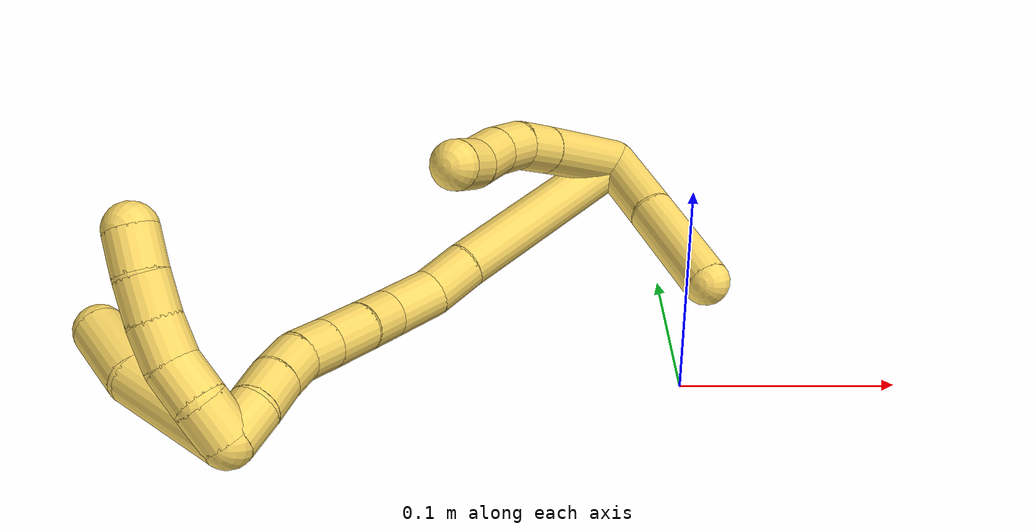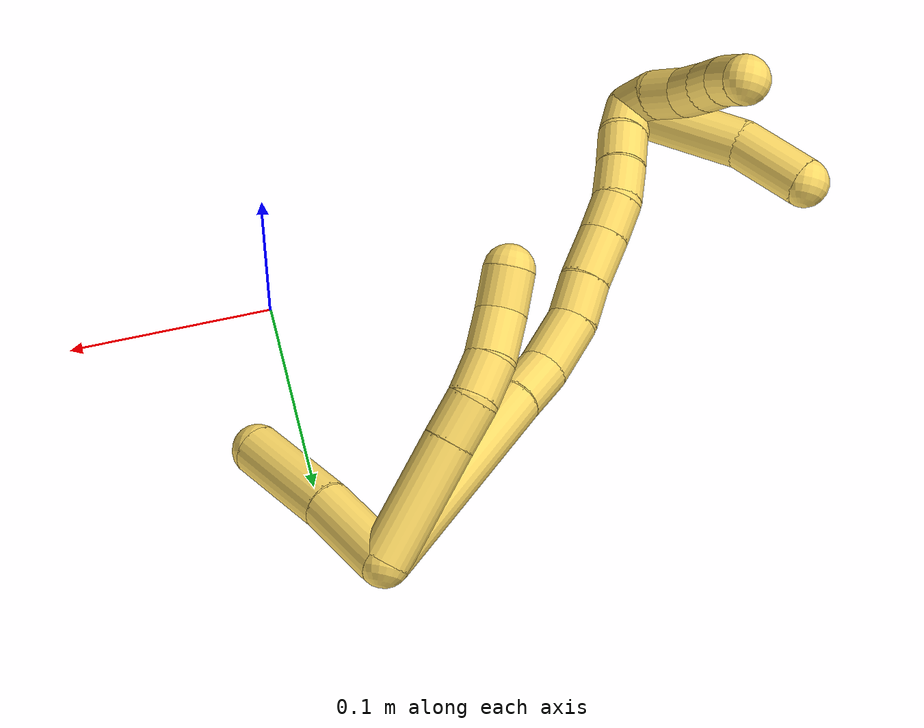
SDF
<sdf version="1.7">
 <world name="default">
  <model name="5">
   <static>0</static>
   <link name="5">
    <collision name="collision-cylinder-e_1_2_8">
     <pose>-0.00795 0.006279 0.02929 -0.211168 -0.259421 0.027647</pose>
     <geometry><cylinder><radius>0.0125</radius><length>0.061984</length></cylinder></geometry>
     <surface>
      <friction><ode><mu>1.16</mu><mu2>1.16</mu2><slip1>0</slip1><slip2>0</slip2></ode></friction>
      <contact><ode><kp>1e+06</kp><kd>1</kd><max_vel>0</max_vel><min_depth>0.001</min_depth></ode></contact>
     </surface>
    </collision>
    <visual name="visual-cylinder-e_1_2_8">
     <pose>-0.00795 0.006279 0.02929 -0.211168 -0.259421 0.027647</pose>
     <geometry><cylinder><radius>0.0125</radius><length>0.061984</length></cylinder></geometry>
     <material><ambient>1 0.858824 0.4 1</ambient></material>
    </visual>
    <collision name="collision-cylinder-e_2_8_9">
     <pose>-0.018963 0.014671 0.069074 -0.198779 -0.278674 0.027968</pose>
     <geometry><cylinder><radius>0.0125</radius><length>0.02227</length></cylinder></geometry>
     <surface>
      <friction><ode><mu>1.16</mu><mu2>1.16</mu2><slip1>0</slip1><slip2>0</slip2></ode></friction>
      <contact><ode><kp>1e+06</kp><kd>1</kd><max_vel>0</max_vel><min_depth>0.001</min_depth></ode></contact>
     </surface>
    </collision>
    <visual name="visual-cylinder-e_2_8_9">
     <pose>-0.018963 0.014671 0.069074 -0.198779 -0.278674 0.027968</pose>
     <geometry><cylinder><radius>0.0125</radius><length>0.02227</length></cylinder></geometry>
     <material><ambient>1 0.858824 0.4 1</ambient></material>
    </visual>
    <collision name="collision-cylinder-e_3_9_10">
     <pose>-0.024216 0.016032 0.089749 0.073887 -0.211331 -0.00784</pose>
     <geometry><cylinder><radius>0.0125</radius><length>0.020881</length></cylinder></geometry>
     <surface>
      <friction><ode><mu>1.16</mu><mu2>1.16</mu2><slip1>0</slip1><slip2>0</slip2></ode></friction>
      <contact><ode><kp>1e+06</kp><kd>1</kd><max_vel>0</max_vel><min_depth>0.001</min_depth></ode></contact>
     </surface>
    </collision>
    <visual name="visual-cylinder-e_3_9_10">
     <pose>-0.024216 0.016032 0.089749 0.073887 -0.211331 -0.00784</pose>
     <geometry><cylinder><radius>0.0125</radius><length>0.020881</length></cylinder></geometry>
     <material><ambient>1 0.858824 0.4 1</ambient></material>
    </visual>
    <collision name="collision-cylinder-e_4_10_11">
     <pose>-0.027127 0.01303 0.11152 0.191572 -0.060923 -0.005855</pose>
     <geometry><cylinder><radius>0.0125</radius><length>0.023657</length></cylinder></geometry>
     <surface>
      <friction><ode><mu>1.16</mu><mu2>1.16</mu2><slip1>0</slip1><slip2>0</slip2></ode></friction>
      <contact><ode><kp>1e+06</kp><kd>1</kd><max_vel>0</max_vel><min_depth>0.001</min_depth></ode></contact>
     </surface>
    </collision>
    <visual name="visual-cylinder-e_4_10_11">
     <pose>-0.027127 0.01303 0.11152 0.191572 -0.060923 -0.005855</pose>
     <geometry><cylinder><radius>0.0125</radius><length>0.023657</length></cylinder></geometry>
     <material><ambient>1 0.858824 0.4 1</ambient></material>
    </visual>
    <collision name="collision-cylinder-e_5_11_6">
     <pose>-0.027601 0.011223 0.133703 -0.041601 0.023166 -0.000482</pose>
     <geometry><cylinder><radius>0.0125</radius><length>0.021207</length></cylinder></geometry>
     <surface>
      <friction><ode><mu>1.16</mu><mu2>1.16</mu2><slip1>0</slip1><slip2>0</slip2></ode></friction>
      <contact><ode><kp>1e+06</kp><kd>1</kd><max_vel>0</max_vel><min_depth>0.001</min_depth></ode></contact>
     </surface>
    </collision>
    <visual name="visual-cylinder-e_5_11_6">
     <pose>-0.027601 0.011223 0.133703 -0.041601 0.023166 -0.000482</pose>
     <geometry><cylinder><radius>0.0125</radius><length>0.021207</length></cylinder></geometry>
     <material><ambient>1 0.858824 0.4 1</ambient></material>
    </visual>
    <collision name="collision-cylinder-e_1_2_12">
     <pose>0.013456 -0.013949 0.011507 0.881003 0.63972 0.309782</pose>
     <geometry><cylinder><radius>0.0125</radius><length>0.045079</length></cylinder></geometry>
     <surface>
      <friction><ode><mu>1.16</mu><mu2>1.16</mu2><slip1>0</slip1><slip2>0</slip2></ode></friction>
      <contact><ode><kp>1e+06</kp><kd>1</kd><max_vel>0</max_vel><min_depth>0.001</min_depth></ode></contact>
     </surface>
    </collision>
    <visual name="visual-cylinder-e_1_2_12">
     <pose>0.013456 -0.013949 0.011507 0.881003 0.63972 0.309782</pose>
     <geometry><cylinder><radius>0.0125</radius><length>0.045079</length></cylinder></geometry>
     <material><ambient>1 0.858824 0.4 1</ambient></material>
    </visual>
    <collision name="collision-cylinder-e_2_12_5">
     <pose>0.043309 -0.046415 0.034942 0.998584 0.639929 0.357567</pose>
     <geometry><cylinder><radius>0.0125</radius><length>0.054921</length></cylinder></geometry>
     <surface>
      <friction><ode><mu>1.16</mu><mu2>1.16</mu2><slip1>0</slip1><slip2>0</slip2></ode></friction>
      <contact><ode><kp>1e+06</kp><kd>1</kd><max_vel>0</max_vel><min_depth>0.001</min_depth></ode></contact>
     </surface>
    </collision>
    <visual name="visual-cylinder-e_2_12_5">
     <pose>0.043309 -0.046415 0.034942 0.998584 0.639929 0.357567</pose>
     <geometry><cylinder><radius>0.0125</radius><length>0.054921</length></cylinder></geometry>
     <material><ambient>1 0.858824 0.4 1</ambient></material>
    </visual>
    <collision name="collision-cylinder-e_1_2_13">
     <pose>-0.026681 -0.020727 0.047485 0.411564 -0.475538 -0.10109</pose>
     <geometry><cylinder><radius>0.0125</radius><length>0.116555</length></cylinder></geometry>
     <surface>
      <friction><ode><mu>1.16</mu><mu2>1.16</mu2><slip1>0</slip1><slip2>0</slip2></ode></friction>
      <contact><ode><kp>1e+06</kp><kd>1</kd><max_vel>0</max_vel><min_depth>0.001</min_depth></ode></contact>
     </surface>
    </collision>
    <visual name="visual-cylinder-e_1_2_13">
     <pose>-0.026681 -0.020727 0.047485 0.411564 -0.475538 -0.10109</pose>
     <geometry><cylinder><radius>0.0125</radius><length>0.116555</length></cylinder></geometry>
     <material><ambient>1 0.858824 0.4 1</ambient></material>
    </visual>
    <collision name="collision-cylinder-e_2_13_14">
     <pose>-0.059375 -0.046759 0.104856 0.49258 -0.492084 -0.126098</pose>
     <geometry><cylinder><radius>0.0125</radius><length>0.02546</length></cylinder></geometry>
     <surface>
      <friction><ode><mu>1.16</mu><mu2>1.16</mu2><slip1>0</slip1><slip2>0</slip2></ode></friction>
      <contact><ode><kp>1e+06</kp><kd>1</kd><max_vel>0</max_vel><min_depth>0.001</min_depth></ode></contact>
     </surface>
    </collision>
    <visual name="visual-cylinder-e_2_13_14">
     <pose>-0.059375 -0.046759 0.104856 0.49258 -0.492084 -0.126098</pose>
     <geometry><cylinder><radius>0.0125</radius><length>0.02546</length></cylinder></geometry>
     <material><ambient>1 0.858824 0.4 1</ambient></material>
    </visual>
    <collision name="collision-cylinder-e_3_14_15">
     <pose>-0.070813 -0.054948 0.128655 0.204288 -0.364586 -0.037785</pose>
     <geometry><cylinder><radius>0.0125</radius><length>0.030417</length></cylinder></geometry>
     <surface>
      <friction><ode><mu>1.16</mu><mu2>1.16</mu2><slip1>0</slip1><slip2>0</slip2></ode></friction>
      <contact><ode><kp>1e+06</kp><kd>1</kd><max_vel>0</max_vel><min_depth>0.001</min_depth></ode></contact>
     </surface>
    </collision>
    <visual name="visual-cylinder-e_3_14_15">
     <pose>-0.070813 -0.054948 0.128655 0.204288 -0.364586 -0.037785</pose>
     <geometry><cylinder><radius>0.0125</radius><length>0.030417</length></cylinder></geometry>
     <material><ambient>1 0.858824 0.4 1</ambient></material>
    </visual>
    <collision name="collision-cylinder-e_4_15_16">
     <pose>-0.077504 -0.058954 0.153426 0.103152 -0.115677 -0.005978</pose>
     <geometry><cylinder><radius>0.0125</radius><length>0.021978</length></cylinder></geometry>
     <surface>
      <friction><ode><mu>1.16</mu><mu2>1.16</mu2><slip1>0</slip1><slip2>0</slip2></ode></friction>
      <contact><ode><kp>1e+06</kp><kd>1</kd><max_vel>0</max_vel><min_depth>0.001</min_depth></ode></contact>
     </surface>
    </collision>
    <visual name="visual-cylinder-e_4_15_16">
     <pose>-0.077504 -0.058954 0.153426 0.103152 -0.115677 -0.005978</pose>
     <geometry><cylinder><radius>0.0125</radius><length>0.021978</length></cylinder></geometry>
     <material><ambient>1 0.858824 0.4 1</ambient></material>
    </visual>
    <collision name="collision-cylinder-e_5_16_17">
     <pose>-0.081513 -0.061722 0.176597 0.132743 -0.217139 -0.01449</pose>
     <geometry><cylinder><radius>0.0125</radius><length>0.025443</length></cylinder></geometry>
     <surface>
      <friction><ode><mu>1.16</mu><mu2>1.16</mu2><slip1>0</slip1><slip2>0</slip2></ode></friction>
      <contact><ode><kp>1e+06</kp><kd>1</kd><max_vel>0</max_vel><min_depth>0.001</min_depth></ode></contact>
     </surface>
    </collision>
    <visual name="visual-cylinder-e_5_16_17">
     <pose>-0.081513 -0.061722 0.176597 0.132743 -0.217139 -0.01449</pose>
     <geometry><cylinder><radius>0.0125</radius><length>0.025443</length></cylinder></geometry>
     <material><ambient>1 0.858824 0.4 1</ambient></material>
    </visual>
    <collision name="collision-cylinder-e_6_17_18">
     <pose>-0.08607 -0.064438 0.198708 0.108953 -0.182281 -0.009967</pose>
     <geometry><cylinder><radius>0.0125</radius><length>0.020045</length></cylinder></geometry>
     <surface>
      <friction><ode><mu>1.16</mu><mu2>1.16</mu2><slip1>0</slip1><slip2>0</slip2></ode></friction>
      <contact><ode><kp>1e+06</kp><kd>1</kd><max_vel>0</max_vel><min_depth>0.001</min_depth></ode></contact>
     </surface>
    </collision>
    <visual name="visual-cylinder-e_6_17_18">
     <pose>-0.08607 -0.064438 0.198708 0.108953 -0.182281 -0.009967</pose>
     <geometry><cylinder><radius>0.0125</radius><length>0.020045</length></cylinder></geometry>
     <material><ambient>1 0.858824 0.4 1</ambient></material>
    </visual>
    <collision name="collision-cylinder-e_7_18_19">
     <pose>-0.087889 -0.068639 0.218005 0.318181 -0.000172 -2.8e-05</pose>
     <geometry><cylinder><radius>0.0125</radius><length>0.020003</length></cylinder></geometry>
     <surface>
      <friction><ode><mu>1.16</mu><mu2>1.16</mu2><slip1>0</slip1><slip2>0</slip2></ode></friction>
      <contact><ode><kp>1e+06</kp><kd>1</kd><max_vel>0</max_vel><min_depth>0.001</min_depth></ode></contact>
     </surface>
    </collision>
    <visual name="visual-cylinder-e_7_18_19">
     <pose>-0.087889 -0.068639 0.218005 0.318181 -0.000172 -2.8e-05</pose>
     <geometry><cylinder><radius>0.0125</radius><length>0.020003</length></cylinder></geometry>
     <material><ambient>1 0.858824 0.4 1</ambient></material>
    </visual>
    <collision name="collision-cylinder-e_8_19_20">
     <pose>-0.087728 -0.075831 0.236659 0.41773 0.016208 0.003435</pose>
     <geometry><cylinder><radius>0.0125</radius><length>0.020033</length></cylinder></geometry>
     <surface>
      <friction><ode><mu>1.16</mu><mu2>1.16</mu2><slip1>0</slip1><slip2>0</slip2></ode></friction>
      <contact><ode><kp>1e+06</kp><kd>1</kd><max_vel>0</max_vel><min_depth>0.001</min_depth></ode></contact>
     </surface>
    </collision>
    <visual name="visual-cylinder-e_8_19_20">
     <pose>-0.087728 -0.075831 0.236659 0.41773 0.016208 0.003435</pose>
     <geometry><cylinder><radius>0.0125</radius><length>0.020033</length></cylinder></geometry>
     <material><ambient>1 0.858824 0.4 1</ambient></material>
    </visual>
    <collision name="collision-cylinder-e_9_20_1">
     <pose>-0.089069 -0.0848 0.254435 0.517347 -0.150365 -0.039857</pose>
     <geometry><cylinder><radius>0.0125</radius><length>0.020067</length></cylinder></geometry>
     <surface>
      <friction><ode><mu>1.16</mu><mu2>1.16</mu2><slip1>0</slip1><slip2>0</slip2></ode></friction>
      <contact><ode><kp>1e+06</kp><kd>1</kd><max_vel>0</max_vel><min_depth>0.001</min_depth></ode></contact>
     </surface>
    </collision>
    <visual name="visual-cylinder-e_9_20_1">
     <pose>-0.089069 -0.0848 0.254435 0.517347 -0.150365 -0.039857</pose>
     <geometry><cylinder><radius>0.0125</radius><length>0.020067</length></cylinder></geometry>
     <material><ambient>1 0.858824 0.4 1</ambient></material>
    </visual>
    <collision name="collision-cylinder-e_1_1_21">
     <pose>-0.117406 -0.076397 0.257649 -1.9567 -1.07928 1.45432</pose>
     <geometry><cylinder><radius>0.0125</radius><length>0.060875</length></cylinder></geometry>
     <surface>
      <friction><ode><mu>1.16</mu><mu2>1.16</mu2><slip1>0</slip1><slip2>0</slip2></ode></friction>
      <contact><ode><kp>1e+06</kp><kd>1</kd><max_vel>0</max_vel><min_depth>0.001</min_depth></ode></contact>
     </surface>
    </collision>
    <visual name="visual-cylinder-e_1_1_21">
     <pose>-0.117406 -0.076397 0.257649 -1.9567 -1.07928 1.45432</pose>
     <geometry><cylinder><radius>0.0125</radius><length>0.060875</length></cylinder></geometry>
     <material><ambient>1 0.858824 0.4 1</ambient></material>
    </visual>
    <collision name="collision-cylinder-e_2_21_4">
     <pose>-0.159025 -0.053285 0.243997 -2.27007 -0.856893 1.55156</pose>
     <geometry><cylinder><radius>0.0125</radius><length>0.039125</length></cylinder></geometry>
     <surface>
      <friction><ode><mu>1.16</mu><mu2>1.16</mu2><slip1>0</slip1><slip2>0</slip2></ode></friction>
      <contact><ode><kp>1e+06</kp><kd>1</kd><max_vel>0</max_vel><min_depth>0.001</min_depth></ode></contact>
     </surface>
    </collision>
    <visual name="visual-cylinder-e_2_21_4">
     <pose>-0.159025 -0.053285 0.243997 -2.27007 -0.856893 1.55156</pose>
     <geometry><cylinder><radius>0.0125</radius><length>0.039125</length></cylinder></geometry>
     <material><ambient>1 0.858824 0.4 1</ambient></material>
    </visual>
    <collision name="collision-cylinder-e_1_1_22">
     <pose>-0.094275 -0.080782 0.265636 -1.2894 -0.379362 0.286723</pose>
     <geometry><cylinder><radius>0.0125</radius><length>0.02</length></cylinder></geometry>
     <surface>
      <friction><ode><mu>1.16</mu><mu2>1.16</mu2><slip1>0</slip1><slip2>0</slip2></ode></friction>
      <contact><ode><kp>1e+06</kp><kd>1</kd><max_vel>0</max_vel><min_depth>0.001</min_depth></ode></contact>
     </surface>
    </collision>
    <visual name="visual-cylinder-e_1_1_22">
     <pose>-0.094275 -0.080782 0.265636 -1.2894 -0.379362 0.286723</pose>
     <geometry><cylinder><radius>0.0125</radius><length>0.02</length></cylinder></geometry>
     <material><ambient>1 0.858824 0.4 1</ambient></material>
    </visual>
    <collision name="collision-cylinder-e_2_22_23">
     <pose>-0.103548 -0.063556 0.268386 -1.55032 -0.590796 0.579486</pose>
     <geometry><cylinder><radius>0.0125</radius><length>0.02</length></cylinder></geometry>
     <surface>
      <friction><ode><mu>1.16</mu><mu2>1.16</mu2><slip1>0</slip1><slip2>0</slip2></ode></friction>
      <contact><ode><kp>1e+06</kp><kd>1</kd><max_vel>0</max_vel><min_depth>0.001</min_depth></ode></contact>
     </surface>
    </collision>
    <visual name="visual-cylinder-e_2_22_23">
     <pose>-0.103548 -0.063556 0.268386 -1.55032 -0.590796 0.579486</pose>
     <geometry><cylinder><radius>0.0125</radius><length>0.02</length></cylinder></geometry>
     <material><ambient>1 0.858824 0.4 1</ambient></material>
    </visual>
    <collision name="collision-cylinder-e_3_23_24">
     <pose>-0.112076 -0.0457 0.268538 -1.57266 -0.30027 0.300821</pose>
     <geometry><cylinder><radius>0.0125</radius><length>0.02</length></cylinder></geometry>
     <surface>
      <friction><ode><mu>1.16</mu><mu2>1.16</mu2><slip1>0</slip1><slip2>0</slip2></ode></friction>
      <contact><ode><kp>1e+06</kp><kd>1</kd><max_vel>0</max_vel><min_depth>0.001</min_depth></ode></contact>
     </surface>
    </collision>
    <visual name="visual-cylinder-e_3_23_24">
     <pose>-0.112076 -0.0457 0.268538 -1.57266 -0.30027 0.300821</pose>
     <geometry><cylinder><radius>0.0125</radius><length>0.02</length></cylinder></geometry>
     <material><ambient>1 0.858824 0.4 1</ambient></material>
    </visual>
    <collision name="collision-cylinder-e_4_24_25">
     <pose>-0.116921 -0.02633 0.268276 -1.59568 -0.18985 0.194603</pose>
     <geometry><cylinder><radius>0.0125</radius><length>0.02</length></cylinder></geometry>
     <surface>
      <friction><ode><mu>1.16</mu><mu2>1.16</mu2><slip1>0</slip1><slip2>0</slip2></ode></friction>
      <contact><ode><kp>1e+06</kp><kd>1</kd><max_vel>0</max_vel><min_depth>0.001</min_depth></ode></contact>
     </surface>
    </collision>
    <visual name="visual-cylinder-e_4_24_25">
     <pose>-0.116921 -0.02633 0.268276 -1.59568 -0.18985 0.194603</pose>
     <geometry><cylinder><radius>0.0125</radius><length>0.02</length></cylinder></geometry>
     <material><ambient>1 0.858824 0.4 1</ambient></material>
    </visual>
    <collision name="collision-cylinder-e_5_25_3">
     <pose>-0.120986 -0.006871 0.266514 -1.72691 -0.219543 0.256424</pose>
     <geometry><cylinder><radius>0.0125</radius><length>0.02</length></cylinder></geometry>
     <surface>
      <friction><ode><mu>1.16</mu><mu2>1.16</mu2><slip1>0</slip1><slip2>0</slip2></ode></friction>
      <contact><ode><kp>1e+06</kp><kd>1</kd><max_vel>0</max_vel><min_depth>0.001</min_depth></ode></contact>
     </surface>
    </collision>
    <visual name="visual-cylinder-e_5_25_3">
     <pose>-0.120986 -0.006871 0.266514 -1.72691 -0.219543 0.256424</pose>
     <geometry><cylinder><radius>0.0125</radius><length>0.02</length></cylinder></geometry>
     <material><ambient>1 0.858824 0.4 1</ambient></material>
    </visual>
    <collision name="collision-sphere-3">
     <pose>-0.123164 0.00277 0.264996 0 -0 0</pose>
     <geometry><sphere><radius>0.0125</radius></sphere></geometry>
     <surface>
      <friction><ode><mu>1.16</mu><mu2>1.16</mu2><slip1>0</slip1><slip2>0</slip2></ode></friction>
      <contact><ode><kp>1e+06</kp><kd>1</kd><max_vel>0</max_vel><min_depth>0.001</min_depth></ode></contact>
     </surface>
    </collision>
    <visual name="visual-sphere-3">
     <pose>-0.123164 0.00277 0.264996 0 -0 0</pose>
     <geometry><sphere><radius>0.0125</radius></sphere></geometry>
     <material><ambient>1 0.858824 0.4 1</ambient></material>
    </visual>
    <collision name="collision-sphere-25">
     <pose>-0.118808 -0.016513 0.268031 0 -0 0</pose>
     <geometry><sphere><radius>0.0125</radius></sphere></geometry>
     <surface>
      <friction><ode><mu>1.16</mu><mu2>1.16</mu2><slip1>0</slip1><slip2>0</slip2></ode></friction>
      <contact><ode><kp>1e+06</kp><kd>1</kd><max_vel>0</max_vel><min_depth>0.001</min_depth></ode></contact>
     </surface>
    </collision>
    <visual name="visual-sphere-25">
     <pose>-0.118808 -0.016513 0.268031 0 -0 0</pose>
     <geometry><sphere><radius>0.0125</radius></sphere></geometry>
     <material><ambient>1 0.858824 0.4 1</ambient></material>
    </visual>
    <collision name="collision-sphere-24">
     <pose>-0.115034 -0.036147 0.26852 0 -0 0</pose>
     <geometry><sphere><radius>0.0125</radius></sphere></geometry>
     <surface>
      <friction><ode><mu>1.16</mu><mu2>1.16</mu2><slip1>0</slip1><slip2>0</slip2></ode></friction>
      <contact><ode><kp>1e+06</kp><kd>1</kd><max_vel>0</max_vel><min_depth>0.001</min_depth></ode></contact>
     </surface>
    </collision>
    <visual name="visual-sphere-24">
     <pose>-0.115034 -0.036147 0.26852 0 -0 0</pose>
     <geometry><sphere><radius>0.0125</radius></sphere></geometry>
     <material><ambient>1 0.858824 0.4 1</ambient></material>
    </visual>
    <collision name="collision-sphere-23">
     <pose>-0.109119 -0.055252 0.268556 0 -0 0</pose>
     <geometry><sphere><radius>0.0125</radius></sphere></geometry>
     <surface>
      <friction><ode><mu>1.16</mu><mu2>1.16</mu2><slip1>0</slip1><slip2>0</slip2></ode></friction>
      <contact><ode><kp>1e+06</kp><kd>1</kd><max_vel>0</max_vel><min_depth>0.001</min_depth></ode></contact>
     </surface>
    </collision>
    <visual name="visual-sphere-23">
     <pose>-0.109119 -0.055252 0.268556 0 -0 0</pose>
     <geometry><sphere><radius>0.0125</radius></sphere></geometry>
     <material><ambient>1 0.858824 0.4 1</ambient></material>
    </visual>
    <collision name="collision-sphere-22">
     <pose>-0.097978 -0.071859 0.268216 0 -0 0</pose>
     <geometry><sphere><radius>0.0125</radius></sphere></geometry>
     <surface>
      <friction><ode><mu>1.16</mu><mu2>1.16</mu2><slip1>0</slip1><slip2>0</slip2></ode></friction>
      <contact><ode><kp>1e+06</kp><kd>1</kd><max_vel>0</max_vel><min_depth>0.001</min_depth></ode></contact>
     </surface>
    </collision>
    <visual name="visual-sphere-22">
     <pose>-0.097978 -0.071859 0.268216 0 -0 0</pose>
     <geometry><sphere><radius>0.0125</radius></sphere></geometry>
     <material><ambient>1 0.858824 0.4 1</ambient></material>
    </visual>
    <collision name="collision-sphere-4">
     <pose>-0.173811 -0.043482 0.235752 0 -0 0</pose>
     <geometry><sphere><radius>0.0125</radius></sphere></geometry>
     <surface>
      <friction><ode><mu>1.16</mu><mu2>1.16</mu2><slip1>0</slip1><slip2>0</slip2></ode></friction>
      <contact><ode><kp>1e+06</kp><kd>1</kd><max_vel>0</max_vel><min_depth>0.001</min_depth></ode></contact>
     </surface>
    </collision>
    <visual name="visual-sphere-4">
     <pose>-0.173811 -0.043482 0.235752 0 -0 0</pose>
     <geometry><sphere><radius>0.0125</radius></sphere></geometry>
     <material><ambient>1 0.858824 0.4 1</ambient></material>
    </visual>
    <collision name="collision-sphere-21">
     <pose>-0.14424 -0.063088 0.252242 0 -0 0</pose>
     <geometry><sphere><radius>0.0125</radius></sphere></geometry>
     <surface>
      <friction><ode><mu>1.16</mu><mu2>1.16</mu2><slip1>0</slip1><slip2>0</slip2></ode></friction>
      <contact><ode><kp>1e+06</kp><kd>1</kd><max_vel>0</max_vel><min_depth>0.001</min_depth></ode></contact>
     </surface>
    </collision>
    <visual name="visual-sphere-21">
     <pose>-0.14424 -0.063088 0.252242 0 -0 0</pose>
     <geometry><sphere><radius>0.0125</radius></sphere></geometry>
     <material><ambient>1 0.858824 0.4 1</ambient></material>
    </visual>
    <collision name="collision-sphere-1">
     <pose>-0.090572 -0.089706 0.263057 0 -0 0</pose>
     <geometry><sphere><radius>0.0125</radius></sphere></geometry>
     <surface>
      <friction><ode><mu>1.16</mu><mu2>1.16</mu2><slip1>0</slip1><slip2>0</slip2></ode></friction>
      <contact><ode><kp>1e+06</kp><kd>1</kd><max_vel>0</max_vel><min_depth>0.001</min_depth></ode></contact>
     </surface>
    </collision>
    <visual name="visual-sphere-1">
     <pose>-0.090572 -0.089706 0.263057 0 -0 0</pose>
     <geometry><sphere><radius>0.0125</radius></sphere></geometry>
     <material><ambient>1 0.858824 0.4 1</ambient></material>
    </visual>
    <collision name="collision-sphere-6">
     <pose>-0.027355 0.011664 0.144294 0 -0 0</pose>
     <geometry><sphere><radius>0.0125</radius></sphere></geometry>
     <surface>
      <friction><ode><mu>1.16</mu><mu2>1.16</mu2><slip1>0</slip1><slip2>0</slip2></ode></friction>
      <contact><ode><kp>1e+06</kp><kd>1</kd><max_vel>0</max_vel><min_depth>0.001</min_depth></ode></contact>
     </surface>
    </collision>
    <visual name="visual-sphere-6">
     <pose>-0.027355 0.011664 0.144294 0 -0 0</pose>
     <geometry><sphere><radius>0.0125</radius></sphere></geometry>
     <material><ambient>1 0.858824 0.4 1</ambient></material>
    </visual>
    <collision name="collision-sphere-11">
     <pose>-0.027847 0.010782 0.123111 0 -0 0</pose>
     <geometry><sphere><radius>0.0125</radius></sphere></geometry>
     <surface>
      <friction><ode><mu>1.16</mu><mu2>1.16</mu2><slip1>0</slip1><slip2>0</slip2></ode></friction>
      <contact><ode><kp>1e+06</kp><kd>1</kd><max_vel>0</max_vel><min_depth>0.001</min_depth></ode></contact>
     </surface>
    </collision>
    <visual name="visual-sphere-11">
     <pose>-0.027847 0.010782 0.123111 0 -0 0</pose>
     <geometry><sphere><radius>0.0125</radius></sphere></geometry>
     <material><ambient>1 0.858824 0.4 1</ambient></material>
    </visual>
    <collision name="collision-sphere-10">
     <pose>-0.026406 0.015278 0.099929 0 -0 0</pose>
     <geometry><sphere><radius>0.0125</radius></sphere></geometry>
     <surface>
      <friction><ode><mu>1.16</mu><mu2>1.16</mu2><slip1>0</slip1><slip2>0</slip2></ode></friction>
      <contact><ode><kp>1e+06</kp><kd>1</kd><max_vel>0</max_vel><min_depth>0.001</min_depth></ode></contact>
     </surface>
    </collision>
    <visual name="visual-sphere-10">
     <pose>-0.026406 0.015278 0.099929 0 -0 0</pose>
     <geometry><sphere><radius>0.0125</radius></sphere></geometry>
     <material><ambient>1 0.858824 0.4 1</ambient></material>
    </visual>
    <collision name="collision-sphere-9">
     <pose>-0.022026 0.016785 0.079568 0 -0 0</pose>
     <geometry><sphere><radius>0.0125</radius></sphere></geometry>
     <surface>
      <friction><ode><mu>1.16</mu><mu2>1.16</mu2><slip1>0</slip1><slip2>0</slip2></ode></friction>
      <contact><ode><kp>1e+06</kp><kd>1</kd><max_vel>0</max_vel><min_depth>0.001</min_depth></ode></contact>
     </surface>
    </collision>
    <visual name="visual-sphere-9">
     <pose>-0.022026 0.016785 0.079568 0 -0 0</pose>
     <geometry><sphere><radius>0.0125</radius></sphere></geometry>
     <material><ambient>1 0.858824 0.4 1</ambient></material>
    </visual>
    <collision name="collision-sphere-2">
     <geometry><sphere><radius>0.0125</radius></sphere></geometry>
     <surface>
      <friction><ode><mu>1.16</mu><mu2>1.16</mu2><slip1>0</slip1><slip2>0</slip2></ode></friction>
      <contact><ode><kp>1e+06</kp><kd>1</kd><max_vel>0</max_vel><min_depth>0.001</min_depth></ode></contact>
     </surface>
    </collision>
    <visual name="visual-sphere-2">
     <geometry><sphere><radius>0.0125</radius></sphere></geometry>
     <material><ambient>1 0.858824 0.4 1</ambient></material>
    </visual>
    <collision name="collision-sphere-19">
     <pose>-0.08789 -0.071768 0.227505 0 -0 0</pose>
     <geometry><sphere><radius>0.0125</radius></sphere></geometry>
     <surface>
      <friction><ode><mu>1.16</mu><mu2>1.16</mu2><slip1>0</slip1><slip2>0</slip2></ode></friction>
      <contact><ode><kp>1e+06</kp><kd>1</kd><max_vel>0</max_vel><min_depth>0.001</min_depth></ode></contact>
     </surface>
    </collision>
    <visual name="visual-sphere-19">
     <pose>-0.08789 -0.071768 0.227505 0 -0 0</pose>
     <geometry><sphere><radius>0.0125</radius></sphere></geometry>
     <material><ambient>1 0.858824 0.4 1</ambient></material>
    </visual>
    <collision name="collision-sphere-8">
     <pose>-0.0159 0.012557 0.058579 0 -0 0</pose>
     <geometry><sphere><radius>0.0125</radius></sphere></geometry>
     <surface>
      <friction><ode><mu>1.16</mu><mu2>1.16</mu2><slip1>0</slip1><slip2>0</slip2></ode></friction>
      <contact><ode><kp>1e+06</kp><kd>1</kd><max_vel>0</max_vel><min_depth>0.001</min_depth></ode></contact>
     </surface>
    </collision>
    <visual name="visual-sphere-8">
     <pose>-0.0159 0.012557 0.058579 0 -0 0</pose>
     <geometry><sphere><radius>0.0125</radius></sphere></geometry>
     <material><ambient>1 0.858824 0.4 1</ambient></material>
    </visual>
    <collision name="collision-sphere-12">
     <pose>0.026911 -0.027897 0.023015 0 -0 0</pose>
     <geometry><sphere><radius>0.0125</radius></sphere></geometry>
     <surface>
      <friction><ode><mu>1.16</mu><mu2>1.16</mu2><slip1>0</slip1><slip2>0</slip2></ode></friction>
      <contact><ode><kp>1e+06</kp><kd>1</kd><max_vel>0</max_vel><min_depth>0.001</min_depth></ode></contact>
     </surface>
    </collision>
    <visual name="visual-sphere-12">
     <pose>0.026911 -0.027897 0.023015 0 -0 0</pose>
     <geometry><sphere><radius>0.0125</radius></sphere></geometry>
     <material><ambient>1 0.858824 0.4 1</ambient></material>
    </visual>
    <collision name="collision-sphere-5">
     <pose>0.059706 -0.064934 0.04687 0 -0 0</pose>
     <geometry><sphere><radius>0.0125</radius></sphere></geometry>
     <surface>
      <friction><ode><mu>1.16</mu><mu2>1.16</mu2><slip1>0</slip1><slip2>0</slip2></ode></friction>
      <contact><ode><kp>1e+06</kp><kd>1</kd><max_vel>0</max_vel><min_depth>0.001</min_depth></ode></contact>
     </surface>
    </collision>
    <visual name="visual-sphere-5">
     <pose>0.059706 -0.064934 0.04687 0 -0 0</pose>
     <geometry><sphere><radius>0.0125</radius></sphere></geometry>
     <material><ambient>1 0.858824 0.4 1</ambient></material>
    </visual>
    <collision name="collision-sphere-13">
     <pose>-0.053361 -0.041454 0.09497 0 -0 0</pose>
     <geometry><sphere><radius>0.0125</radius></sphere></geometry>
     <surface>
      <friction><ode><mu>1.16</mu><mu2>1.16</mu2><slip1>0</slip1><slip2>0</slip2></ode></friction>
      <contact><ode><kp>1e+06</kp><kd>1</kd><max_vel>0</max_vel><min_depth>0.001</min_depth></ode></contact>
     </surface>
    </collision>
    <visual name="visual-sphere-13">
     <pose>-0.053361 -0.041454 0.09497 0 -0 0</pose>
     <geometry><sphere><radius>0.0125</radius></sphere></geometry>
     <material><ambient>1 0.858824 0.4 1</ambient></material>
    </visual>
    <collision name="collision-sphere-14">
     <pose>-0.06539 -0.052065 0.114742 0 -0 0</pose>
     <geometry><sphere><radius>0.0125</radius></sphere></geometry>
     <surface>
      <friction><ode><mu>1.16</mu><mu2>1.16</mu2><slip1>0</slip1><slip2>0</slip2></ode></friction>
      <contact><ode><kp>1e+06</kp><kd>1</kd><max_vel>0</max_vel><min_depth>0.001</min_depth></ode></contact>
     </surface>
    </collision>
    <visual name="visual-sphere-14">
     <pose>-0.06539 -0.052065 0.114742 0 -0 0</pose>
     <geometry><sphere><radius>0.0125</radius></sphere></geometry>
     <material><ambient>1 0.858824 0.4 1</ambient></material>
    </visual>
    <collision name="collision-sphere-15">
     <pose>-0.076235 -0.05783 0.142568 0 -0 0</pose>
     <geometry><sphere><radius>0.0125</radius></sphere></geometry>
     <surface>
      <friction><ode><mu>1.16</mu><mu2>1.16</mu2><slip1>0</slip1><slip2>0</slip2></ode></friction>
      <contact><ode><kp>1e+06</kp><kd>1</kd><max_vel>0</max_vel><min_depth>0.001</min_depth></ode></contact>
     </surface>
    </collision>
    <visual name="visual-sphere-15">
     <pose>-0.076235 -0.05783 0.142568 0 -0 0</pose>
     <geometry><sphere><radius>0.0125</radius></sphere></geometry>
     <material><ambient>1 0.858824 0.4 1</ambient></material>
    </visual>
    <collision name="collision-sphere-16">
     <pose>-0.078772 -0.060078 0.164283 0 -0 0</pose>
     <geometry><sphere><radius>0.0125</radius></sphere></geometry>
     <surface>
      <friction><ode><mu>1.16</mu><mu2>1.16</mu2><slip1>0</slip1><slip2>0</slip2></ode></friction>
      <contact><ode><kp>1e+06</kp><kd>1</kd><max_vel>0</max_vel><min_depth>0.001</min_depth></ode></contact>
     </surface>
    </collision>
    <visual name="visual-sphere-16">
     <pose>-0.078772 -0.060078 0.164283 0 -0 0</pose>
     <geometry><sphere><radius>0.0125</radius></sphere></geometry>
     <material><ambient>1 0.858824 0.4 1</ambient></material>
    </visual>
    <collision name="collision-sphere-17">
     <pose>-0.084253 -0.063366 0.18891 0 -0 0</pose>
     <geometry><sphere><radius>0.0125</radius></sphere></geometry>
     <surface>
      <friction><ode><mu>1.16</mu><mu2>1.16</mu2><slip1>0</slip1><slip2>0</slip2></ode></friction>
      <contact><ode><kp>1e+06</kp><kd>1</kd><max_vel>0</max_vel><min_depth>0.001</min_depth></ode></contact>
     </surface>
    </collision>
    <visual name="visual-sphere-17">
     <pose>-0.084253 -0.063366 0.18891 0 -0 0</pose>
     <geometry><sphere><radius>0.0125</radius></sphere></geometry>
     <material><ambient>1 0.858824 0.4 1</ambient></material>
    </visual>
    <collision name="collision-sphere-18">
     <pose>-0.087887 -0.06551 0.208506 0 -0 0</pose>
     <geometry><sphere><radius>0.0125</radius></sphere></geometry>
     <surface>
      <friction><ode><mu>1.16</mu><mu2>1.16</mu2><slip1>0</slip1><slip2>0</slip2></ode></friction>
      <contact><ode><kp>1e+06</kp><kd>1</kd><max_vel>0</max_vel><min_depth>0.001</min_depth></ode></contact>
     </surface>
    </collision>
    <visual name="visual-sphere-18">
     <pose>-0.087887 -0.06551 0.208506 0 -0 0</pose>
     <geometry><sphere><radius>0.0125</radius></sphere></geometry>
     <material><ambient>1 0.858824 0.4 1</ambient></material>
    </visual>
    <collision name="collision-sphere-20">
     <pose>-0.087566 -0.079894 0.245813 0 -0 0</pose>
     <geometry><sphere><radius>0.0125</radius></sphere></geometry>
     <surface>
      <friction><ode><mu>1.16</mu><mu2>1.16</mu2><slip1>0</slip1><slip2>0</slip2></ode></friction>
      <contact><ode><kp>1e+06</kp><kd>1</kd><max_vel>0</max_vel><min_depth>0.001</min_depth></ode></contact>
     </surface>
    </collision>
    <visual name="visual-sphere-20">
     <pose>-0.087566 -0.079894 0.245813 0 -0 0</pose>
     <geometry><sphere><radius>0.0125</radius></sphere></geometry>
     <material><ambient>1 0.858824 0.4 1</ambient></material>
    </visual>
    <inertial>
     <pose>-0.055425 -0.035747 0.13772 0 -0 0</pose>
     <mass>0.75</mass>
     <inertia>
      <ixx>0.000188</ixx>
      <ixy>0</ixy>
      <ixz>0</ixz>
      <iyy>0.00022</iyy>
      <iyz>0</iyz>
      <izz>0.000163</izz>
     </inertia>
    </inertial>
   </link>
   <pose>-0.01974 0.166042 0.041376 1.24924 -0.262408 -0.359369</pose>
  </model>
 </world>
</sdf>
